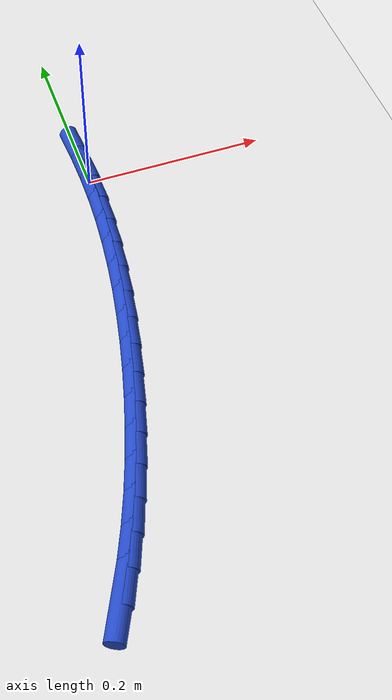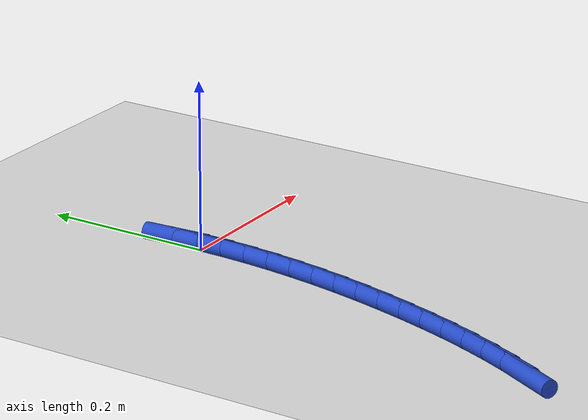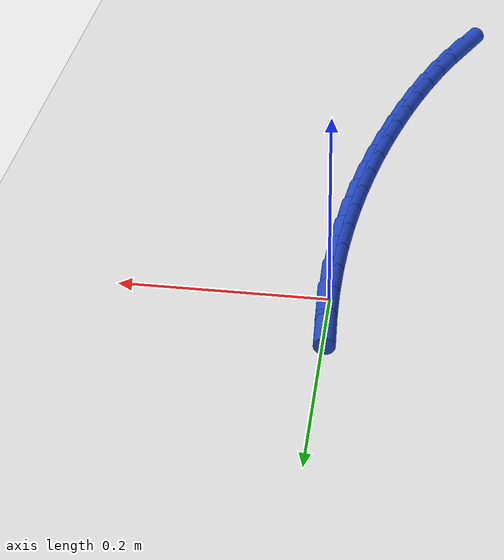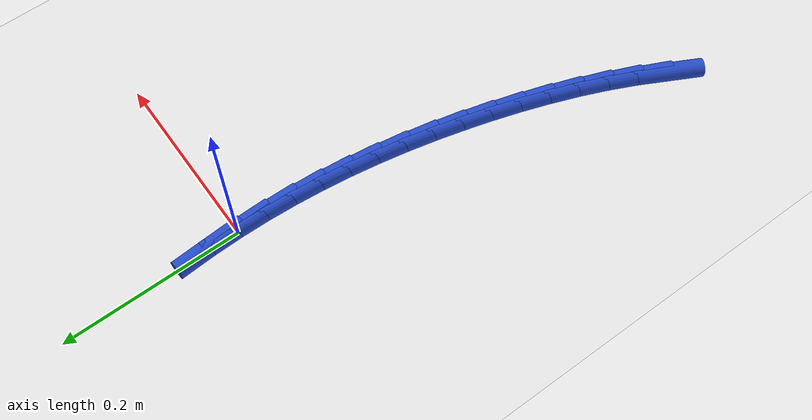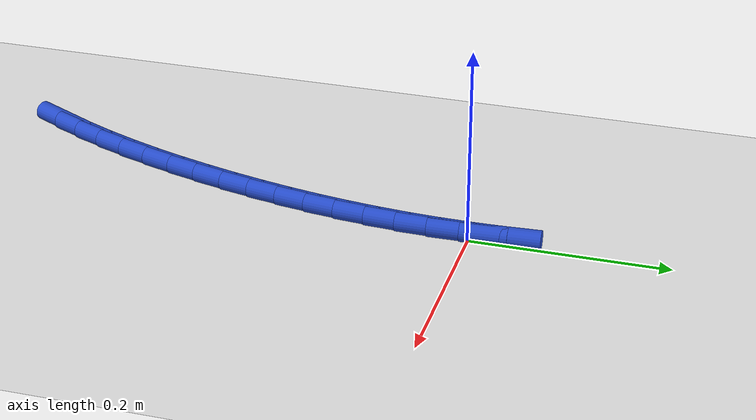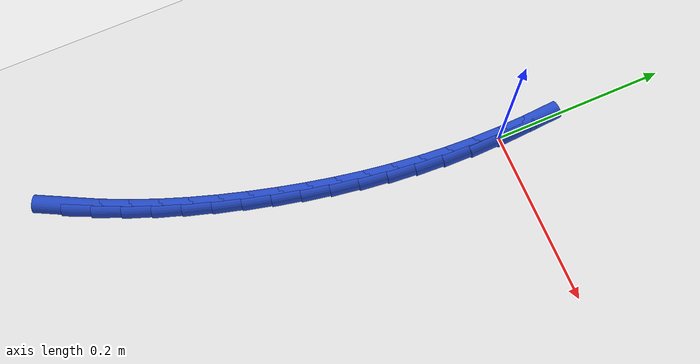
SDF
<sdf version="1.6">
 <world name="default">
  <model name="ground_plane">
   <static>1</static>
   <link name="link">
    <collision name="collision">
     <geometry><plane><normal>0 0 1</normal><size>100 100</size></plane></geometry>
     <surface><friction><ode><mu>100</mu><mu2>50</mu2></ode></friction></surface>
    </collision>
    <visual name="visual">
     <cast_shadows>0</cast_shadows>
     <geometry><plane><normal>0 0 1</normal><size>100 100</size></plane></geometry>
     <material>
      <script><uri>file://media/materials/scripts/gazebo.material</uri><name>Gazebo/WhiteGlow</name></script>
     </material>
    </visual>
   </link>
  </model>
  <model name="line">
   <link name="link_0">
    <pose>1.474514954580286e-17 1.457167719820518e-16 0.01 0 1.57 -1.5475321743122046</pose>
    <collision name="collision">
     <geometry><cylinder><radius>0.01</radius><length>0.08</length></cylinder></geometry>
    </collision>
    <visual name="visual">
     <material>
      <script><name>Gazebo/Blue</name><uri>file://media/materials/scripts/gazebo.material</uri></script>
     </material>
     <geometry><cylinder><radius>0.01</radius><length>0.08</length></cylinder></geometry>
    </visual>
   </link>
   <link name="link_1">
    <pose>-0.0007522540752061193 0.03232949745408953 0.01 0 1.57 -1.51250851940609</pose>
    <collision name="collision">
     <geometry><cylinder><radius>0.01</radius><length>0.08</length></cylinder></geometry>
    </collision>
    <visual name="visual">
     <material>
      <script><name>Gazebo/Blue</name><uri>file://media/materials/scripts/gazebo.material</uri></script>
     </material>
     <geometry><cylinder><radius>0.01</radius><length>0.08</length></cylinder></geometry>
    </visual>
   </link>
   <link name="link_205">
    <pose>-0.11339839031291904 -0.469179748677663 0.01 0 1.57 1.0993313043499093</pose>
    <collision name="collision">
     <geometry><cylinder><radius>0.01</radius><length>0.08</length></cylinder></geometry>
    </collision>
    <visual name="visual">
     <material>
      <script><name>Gazebo/Blue</name><uri>file://media/materials/scripts/gazebo.material</uri></script>
     </material>
     <geometry><cylinder><radius>0.01</radius><length>0.08</length></cylinder></geometry>
    </visual>
   </link>
   <link name="link_206">
    <pose>-0.0987220807757001 -0.44039196391998764 0.01 0 1.57 1.1437435821226605</pose>
    <collision name="collision">
     <geometry><cylinder><radius>0.01</radius><length>0.08</length></cylinder></geometry>
    </collision>
    <visual name="visual">
     <material>
      <script><name>Gazebo/Blue</name><uri>file://media/materials/scripts/gazebo.material</uri></script>
     </material>
     <geometry><cylinder><radius>0.01</radius><length>0.08</length></cylinder></geometry>
    </visual>
   </link>
   <link name="link_207">
    <pose>-0.08526103293418155 -0.41081105751960867 0.01 0 1.57 1.1838760716549532</pose>
    <collision name="collision">
     <geometry><cylinder><radius>0.01</radius><length>0.08</length></cylinder></geometry>
    </collision>
    <visual name="visual">
     <material>
      <script><name>Gazebo/Blue</name><uri>file://media/materials/scripts/gazebo.material</uri></script>
     </material>
     <geometry><cylinder><radius>0.01</radius><length>0.08</length></cylinder></geometry>
    </visual>
   </link>
   <link name="link_208">
    <pose>-0.07293947631408716 -0.3805710913007678 0.01 0 1.57 1.220000691865346</pose>
    <collision name="collision">
     <geometry><cylinder><radius>0.01</radius><length>0.08</length></cylinder></geometry>
    </collision>
    <visual name="visual">
     <material>
      <script><name>Gazebo/Blue</name><uri>file://media/materials/scripts/gazebo.material</uri></script>
     </material>
     <geometry><cylinder><radius>0.01</radius><length>0.08</length></cylinder></geometry>
    </visual>
   </link>
   <link name="link_209">
    <pose>-0.06168164044113972 -0.34980612708770426 0.01 0 1.57 1.2523834468896051</pose>
    <collision name="collision">
     <geometry><cylinder><radius>0.01</radius><length>0.08</length></cylinder></geometry>
    </collision>
    <visual name="visual">
     <material>
      <script><name>Gazebo/Blue</name><uri>file://media/materials/scripts/gazebo.material</uri></script>
     </material>
     <geometry><cylinder><radius>0.01</radius><length>0.08</length></cylinder></geometry>
    </visual>
   </link>
   <link name="link_210">
    <pose>-0.051411754841062335 -0.318650226704658 0.01 0 1.57 1.281271921789613</pose>
    <collision name="collision">
     <geometry><cylinder><radius>0.01</radius><length>0.08</length></cylinder></geometry>
    </collision>
    <visual name="visual">
     <material>
      <script><name>Gazebo/Blue</name><uri>file://media/materials/scripts/gazebo.material</uri></script>
     </material>
     <geometry><cylinder><radius>0.01</radius><length>0.08</length></cylinder></geometry>
    </visual>
   </link>
   <link name="link_211">
    <pose>-0.042054049039578156 -0.28723745197586903 0.01 0 1.57 1.307314341945187</pose>
    <collision name="collision">
     <geometry><cylinder><radius>0.01</radius><length>0.08</length></cylinder></geometry>
    </collision>
    <visual name="visual">
     <material>
      <script><name>Gazebo/Blue</name><uri>file://media/materials/scripts/gazebo.material</uri></script>
     </material>
     <geometry><cylinder><radius>0.01</radius><length>0.08</length></cylinder></geometry>
    </visual>
   </link>
   <link name="link_212">
    <pose>-0.03354388964700518 -0.2556895304736809 0.01 0 1.57 1.3335669873706921</pose>
    <collision name="collision">
     <geometry><cylinder><radius>0.01</radius><length>0.08</length></cylinder></geometry>
    </collision>
    <visual name="visual">
     <material>
      <script><name>Gazebo/Blue</name><uri>file://media/materials/scripts/gazebo.material</uri></script>
     </material>
     <geometry><cylinder><radius>0.01</radius><length>0.08</length></cylinder></geometry>
    </visual>
   </link>
   <link name="link_213">
    <pose>-0.025892586843018348 -0.22404408273988874 0.01 0 1.57 1.3612725335633564</pose>
    <collision name="collision">
     <geometry><cylinder><radius>0.01</radius><length>0.08</length></cylinder></geometry>
    </collision>
    <visual name="visual">
     <material>
      <script><name>Gazebo/Blue</name><uri>file://media/materials/scripts/gazebo.material</uri></script>
     </material>
     <geometry><cylinder><radius>0.01</radius><length>0.08</length></cylinder></geometry>
    </visual>
   </link>
   <link name="link_214">
    <pose>-0.019143148126750588 -0.19230362473220178 0.01 0 1.57 1.390437158284756</pose>
    <collision name="collision">
     <geometry><cylinder><radius>0.01</radius><length>0.08</length></cylinder></geometry>
    </collision>
    <visual name="visual">
     <material>
      <script><name>Gazebo/Blue</name><uri>file://media/materials/scripts/gazebo.material</uri></script>
     </material>
     <geometry><cylinder><radius>0.01</radius><length>0.08</length></cylinder></geometry>
    </visual>
   </link>
   <link name="link_215">
    <pose>-0.01333868668264396 -0.16047055536250757 0.01 0 1.57 1.421052402221893</pose>
    <collision name="collision">
     <geometry><cylinder><radius>0.01</radius><length>0.08</length></cylinder></geometry>
    </collision>
    <visual name="visual">
     <material>
      <script><name>Gazebo/Blue</name><uri>file://media/materials/scripts/gazebo.material</uri></script>
     </material>
     <geometry><cylinder><radius>0.01</radius><length>0.08</length></cylinder></geometry>
    </visual>
   </link>
   <link name="link_216">
    <pose>-0.008522315695140422 -0.12854727354269324 0.01 0 1.57 1.4530973713533863</pose>
    <collision name="collision">
     <geometry><cylinder><radius>0.01</radius><length>0.08</length></cylinder></geometry>
    </collision>
    <visual name="visual">
     <material>
      <script><name>Gazebo/Blue</name><uri>file://media/materials/scripts/gazebo.material</uri></script>
     </material>
     <geometry><cylinder><radius>0.01</radius><length>0.08</length></cylinder></geometry>
    </visual>
   </link>
   <link name="link_217">
    <pose>-0.004737148348682274 -0.0965361781846481 0.01 0 1.57 1.486536943882043</pose>
    <collision name="collision">
     <geometry><cylinder><radius>0.01</radius><length>0.08</length></cylinder></geometry>
    </collision>
    <visual name="visual">
     <material>
      <script><name>Gazebo/Blue</name><uri>file://media/materials/scripts/gazebo.material</uri></script>
     </material>
     <geometry><cylinder><radius>0.01</radius><length>0.08</length></cylinder></geometry>
    </visual>
   </link>
   <link name="link_218">
    <pose>-0.002026297827711447 -0.0644396682002591 0.01 0 1.57 1.5213201431016037</pose>
    <collision name="collision">
     <geometry><cylinder><radius>0.01</radius><length>0.08</length></cylinder></geometry>
    </collision>
    <visual name="visual">
     <material>
      <script><name>Gazebo/Blue</name><uri>file://media/materials/scripts/gazebo.material</uri></script>
     </material>
     <geometry><cylinder><radius>0.01</radius><length>0.08</length></cylinder></geometry>
    </visual>
   </link>
   <link name="link_219">
    <pose>-0.0004328773166699957 -0.03226014250141403 0.01 0 1.57 1.5573787995981005</pose>
    <collision name="collision">
     <geometry><cylinder><radius>0.01</radius><length>0.08</length></cylinder></geometry>
    </collision>
    <visual name="visual">
     <material>
      <script><name>Gazebo/Blue</name><uri>file://media/materials/scripts/gazebo.material</uri></script>
     </material>
     <geometry><cylinder><radius>0.01</radius><length>0.08</length></cylinder></geometry>
    </visual>
   </link>
   <link name="link_220">
    <pose>5.204170427930421e-18 1.5265566588595902e-16 0.01 0 1.57 -1.5469660168164712</pose>
    <collision name="collision">
     <geometry><cylinder><radius>0.01</radius><length>0.08</length></cylinder></geometry>
    </collision>
    <visual name="visual">
     <material>
      <script><name>Gazebo/Blue</name><uri>file://media/materials/scripts/gazebo.material</uri></script>
     </material>
     <geometry><cylinder><radius>0.01</radius><length>0.08</length></cylinder></geometry>
    </visual>
   </link>
  </model>
 </world>
</sdf>
